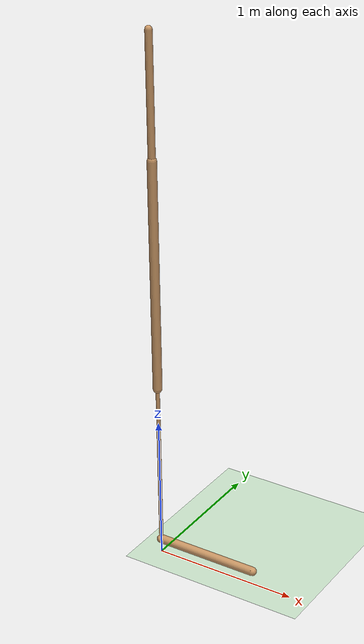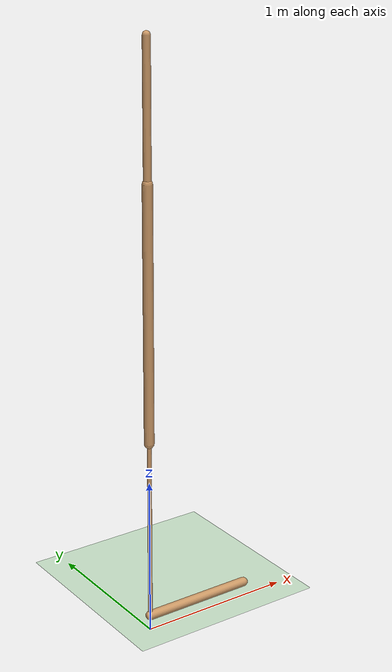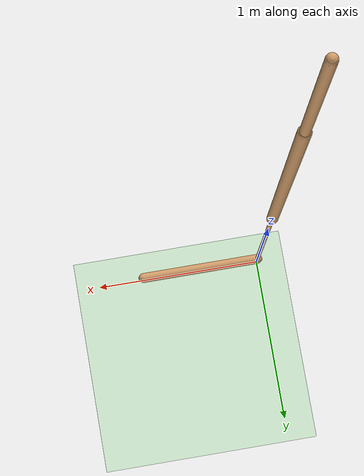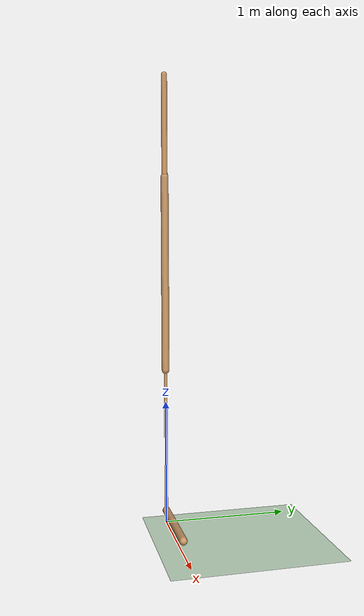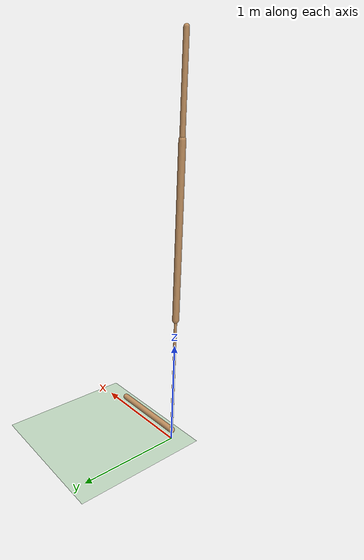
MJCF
<mujoco model="walker2d">
  <compiler angle="degree" inertiafromgeom="true" />
  <default>
    <joint armature="0.01" damping=".1" limited="true" />
    <geom conaffinity="0" condim="3" contype="1" density="1000" friction=".7 .1 .1" rgba="0.8 0.6 .4 1" />
  </default>
  <option integrator="RK4" timestep="0.002" />
  <worldbody>
    <light cutoff="100" diffuse="1 1 1" dir="-0 0 -1.3" directional="true" exponent="1" pos="0 0 1.3" specular=".1 .1 .1" />
    <geom conaffinity="1" condim="3" name="floor" pos="0 0 0" rgba="0.8 0.9 0.8 1" size="40 40 40" type="plane" material="MatPlane" />
    <body name="torso" pos="0 0 3.220033919811249">
      <camera name="track" mode="trackcom" pos="0 -5 -1.25" xyaxes="1 0 0 0 0 1" />
      <joint armature="0" axis="1 0 0" damping="0" limited="false" name="rootx" pos="0 0 -1.25" stiffness="0" type="slide" />
      <joint armature="0" axis="0 0 1" damping="0" limited="false" name="rootz" pos="0 0 -1.25" ref="1.25" stiffness="0" type="slide" />
      <joint armature="0" axis="0 1 0" damping="0" limited="false" name="rooty" pos="0 0 0" stiffness="0" type="hinge" />
      <geom friction="0.9" name="torso_geom" size="0.023532263934612274 0.40194588899612427" type="capsule" />
      <body name="thigh" pos="0 0 -0.40194588899612427">
        <joint axis="0 -1 0" name="thigh_joint" pos="0 0 0" range="-150 0" type="hinge" />
        <site name="torso_thigh_site" pos="0 0 0" size="0.01" type="sphere" rgba="1 0 0 0.5" />
        <geom friction="0.9" pos="0 0 -0.7783632278442383" name="thigh_geom" size="0.030666077509522438 0.7783632278442383" type="capsule" />
        <body name="leg" pos="0 0 -2.1374072432518005">
          <joint axis="0 -1 0" name="leg_joint" pos="0 0 0.580680787563324" range="-150 0" type="hinge" />
          <site name="thigh_leg_site" pos="0 0 0.25" size="0.01" type="sphere" rgba="1 0 0 0.5" />
          <geom friction="0.9" name="leg_geom" size="0.013035496696829796 0.580680787563324" type="capsule" />
          <body name="foot" pos="0.7183640003204346 0 -0.680680787563324">
            <joint axis="0 -1 0" name="foot_joint" pos="-0.7183640003204346 0 0.1" range="-45 45" type="hinge" />
            <site name="leg_foot_site" pos="-0.2 0 0.1" size="0.01" type="sphere" rgba="1 0 0 0.5" />
            <geom friction="0.9" pos="-0.3591820001602173 0 0.1" quat="0.70710678118654757 0 -0.70710678118654746 0" name="foot_geom" size="0.029917966574430466 0.3591820001602173" type="capsule" />
          </body>
        </body>
      </body>

      <body name="thigh_left" pos="0 0 -0.40194588899612427">
        <joint axis="0 -1 0" name="thigh_left_joint" pos="0 0 0" range="-150 0" type="hinge" />
        <site name="torso_thigh_left_site" pos="0 0 0" size="0.01" type="sphere" rgba="1 0 0 0.5" />
        <geom friction="0.9" name="thigh_left_geom" rgba=".7 .3 .6 1" size="0.030666077509522438 0.7783632278442383" pos="0 0 -0.7783632278442383" type="capsule" />
        <body name="leg_left" pos="0 0 -2.1374072432518005">
          <joint axis="0 -1 0" name="leg_left_joint" pos="0 0 0.580680787563324" range="-150 0" type="hinge" />
          <site name="thigh_leg_left_site" pos="0 0 0.25" size="0.01" type="sphere" rgba="1 0 0 0.5" />
          <geom friction="0.9" name="leg_left_geom" rgba=".7 .3 .6 1" size="0.013035496696829796 0.580680787563324" type="capsule" />
          <body name="foot_left" pos="0.7183640003204346 0 -0.680680787563324">
            <joint axis="0 -1 0" name="foot_left_joint" pos="-0.7183640003204346 0 0.1" range="-45 45" type="hinge" />
            <site name="leg_foot_left_site" pos="-0.2 0 0.1" size="0.01" type="sphere" rgba="1 0 0 0.5" />
            <geom friction="1.9" name="foot_left_geom" rgba=".7 .3 .6 1" size="0.029917966574430466 0.3591820001602173" pos="-0.3591820001602173 0 0.1" type="capsule" quat="0.70710678118654757 0 -0.70710678118654746 0" />
          </body>
        </body>
      </body>
    </body>
  </worldbody>
  <actuator>

    <motor ctrllimited="true" ctrlrange="-1.0 1.0" gear="130.12964400410115" joint="thigh_joint" />
    <motor ctrllimited="true" ctrlrange="-1.0 1.0" gear="24.667925815408246" joint="leg_joint" />
    <motor ctrllimited="true" ctrlrange="-1.0 1.0" gear="89.30508929465663" joint="foot_joint" />
    <motor ctrllimited="true" ctrlrange="-1.0 1.0" gear="130.12964400410115" joint="thigh_left_joint" />
    <motor ctrllimited="true" ctrlrange="-1.0 1.0" gear="24.667925815408246" joint="leg_left_joint" />
    <motor ctrllimited="true" ctrlrange="-1.0 1.0" gear="89.30508929465663" joint="foot_left_joint" />

  </actuator>
    <asset>
        <texture type="skybox" builtin="gradient" rgb1=".4 .5 .6" rgb2="0 0 0" width="100" height="100" />
        <texture builtin="flat" height="1278" mark="cross" markrgb="1 1 1" name="texgeom" random="0.01" rgb1="0.8 0.6 0.4" rgb2="0.8 0.6 0.4" type="cube" width="127" />
        <texture builtin="checker" height="100" name="texplane" rgb1="0 0 0" rgb2="0.8 0.8 0.8" type="2d" width="100" />
        <material name="MatPlane" reflectance="0.5" shininess="1" specular="1" texrepeat="60 60" texture="texplane" />
        <material name="geom" texture="texgeom" texuniform="true" />
    </asset>

  <sensor>
    <force site="torso_thigh_site" name="torso_thigh_sensor" />
    <force site="thigh_leg_site" name="thigh_leg_sensor" />
    <force site="leg_foot_site" name="leg_foot_sensor" />
    <force site="torso_thigh_left_site" name="torso_thigh_left_sensor" />
    <force site="thigh_leg_left_site" name="thigh_leg_left_sensor" />
    <force site="leg_foot_left_site" name="leg_foot_left_sensor" />
  </sensor>
</mujoco>
